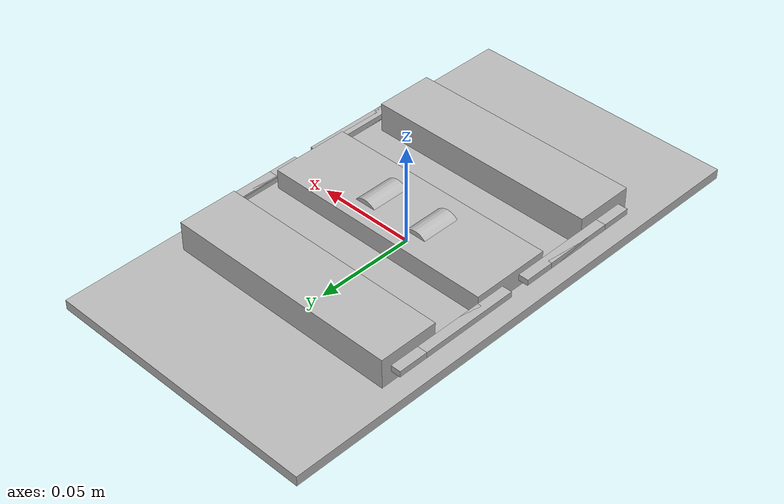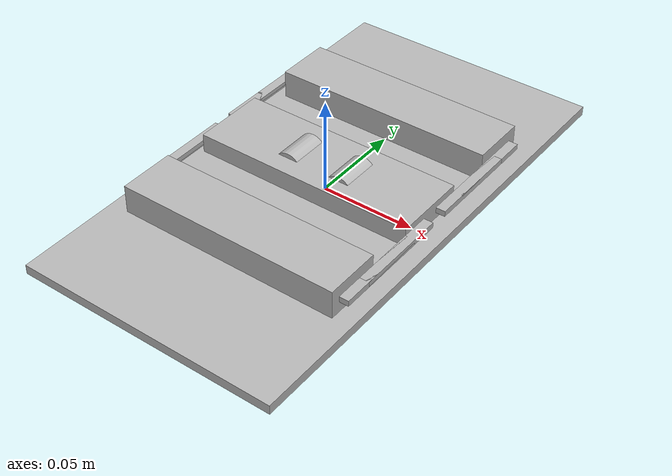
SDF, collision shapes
<?xml version='1.0'?>
<sdf version='1.4'>
  <model name="actuatorBot">
    <static>false</static>

    <link name='base'>
          <pose>0 0 .0025 0 0 0</pose>
          <collision name='collision'>
            <geometry>
              <box>
                <size>0.14 0.26 0.005</size>
              </box>
            </geometry>
          </collision>

          <visual name='visual'>
            <pose>0 0 0 0 0 1.57079633</pose>
            <geometry>
              <mesh>
                <uri>model://actuatorBot/meshes/base.dae</uri>
              </mesh>
            </geometry>
          </visual>
      </link>
      <link name="carriage1">
        <pose>0 0.06 0.0125 0 0 0</pose>
        <collision name="collision">
          <geometry>
            <box>
              <size>0.12 0.03 0.015</size>
            </box>
          </geometry>
        </collision>
        <visual name='visual'>
            <pose>-0.0025 0 0 0 0 0.005</pose>
            <geometry>
              <mesh>
                <uri>model://actuatorBot/meshes/carriage.dae</uri>
              </mesh>
            </geometry>
          </visual>
      </link>

    <link name="carriage2">
        <pose>0 -0.06 0.0125 0 0 0</pose>
        <collision name="collision">
          <geometry>
            <box>
              <size>0.12 0.03 0.015</size>
            </box>
          </geometry>
        </collision>
        <visual name='visual'>
            <pose>-0.0025 0 0 0 0 0.005</pose>
            <geometry>
              <mesh>
                <uri>model://actuatorBot/meshes/carriage.dae</uri>
              </mesh>
            </geometry>
          </visual>
      </link>

  <link name="arml1">
        <pose>0.0625 -0.045 .0125 0 0 0</pose>
        <collision name="collision">
          <geometry>
            <box>
              <size>0.005 0.05 0.003</size>
            </box>
          </geometry>
        </collision>
        <visual name='visual'>
            <pose>0 0 0 1.57059633 0 1.57059633</pose>
            <geometry>
              <mesh>
                <uri>model://actuatorBot/meshes/arm1.dae</uri>
              </mesh>
            </geometry>
          </visual>
      </link>

  <link name="arml2">
        <pose>0.0625 0.045 .0125 0 0 0</pose>
        <collision name="collision">
          <geometry>
            <box>
              <size>0.005 0.05 0.003</size>
            </box>
          </geometry>
        </collision>
        <visual name='visual'>
            <pose>0 0 0 1.57059633 0 1.57059633</pose>
            <geometry>
              <mesh>
                <uri>model://actuatorBot/meshes/arm1.dae</uri>
              </mesh>
            </geometry>
          </visual>
      </link>

<link name="arml3">
        <pose>0.0625 -0.03 .0125 0 0 0</pose>
        <collision name="collision">
          <geometry>
            <box>
              <size>0.005 0.05 0.003</size>
            </box>
          </geometry>
        </collision>
        <visual name='visual'>
            <pose>0 0 0 1.57059633 3.1415 1.57059633</pose>
            <geometry>
              <mesh>
                <uri>model://actuatorBot/meshes/arm1.dae</uri>
              </mesh>
            </geometry>
          </visual>
      </link>

  <link name="arml4">
        <pose>0.0625 0.03 .0125 0 0 0</pose>
        <collision name="collision">
          <geometry>
            <box>
              <size>0.005 0.05 0.003</size>
            </box>
          </geometry>
        </collision>
        <visual name='visual'>
            <pose>0 0 0 1.57059633 3.1415 1.57059633</pose>
            <geometry>
              <mesh>
                <uri>model://actuatorBot/meshes/arm1.dae</uri>
              </mesh>
            </geometry>
          </visual>
      </link>

<link name="armr1">
        <pose>-0.0625 -0.045 .0125 0 0 0</pose>
        <collision name="collision">
          <geometry>
            <box>
              <size>0.005 0.05 0.003</size>
            </box>
          </geometry>
        </collision>
        <visual name='visual'>
            <pose>0 0 0 1.57059633 0 1.57059633</pose>
            <geometry>
              <mesh>
                <uri>model://actuatorBot/meshes/arm1.dae</uri>
              </mesh>
            </geometry>
          </visual>
      </link>

  <link name="armr2">
        <pose>-0.0625 0.045 .0125 0 0 0</pose>
        <collision name="collision">
          <geometry>
            <box>
              <size>0.005 0.05 0.003</size>
            </box>
          </geometry>
        </collision>
        <visual name='visual'>
            <pose>0 0 0 1.57059633 0 1.57059633</pose>
            <geometry>
              <mesh>
                <uri>model://actuatorBot/meshes/arm1.dae</uri>
              </mesh>
            </geometry>
          </visual>
      </link>

<link name="armr3">
        <pose>-0.0625 -0.03 .0125 0 0 0</pose>
        <collision name="collision">
          <geometry>
            <box>
              <size>0.005 0.05 0.003</size>
            </box>
          </geometry>
        </collision>
        <visual name='visual'>
            <pose>0 0 0 1.57059633 3.1415 1.57059633</pose>
            <geometry>
              <mesh>
                <uri>model://actuatorBot/meshes/arm1.dae</uri>
              </mesh>
            </geometry>
          </visual>
      </link>

  <link name="armr4">
        <pose>-0.0625 0.03 .0125 0 0 0</pose>
        <collision name="collision">
          <geometry>
            <box>
              <size>0.005 0.05 0.003</size>
            </box>
          </geometry>
        </collision>
        <visual name='visual'>
            <pose>0 0 0 1.57059633 3.1415 1.57059633</pose>
            <geometry>
              <mesh>
                <uri>model://actuatorBot/meshes/arm1.dae</uri>
              </mesh>
            </geometry>
          </visual>
      </link>

  <link name="middle">
        <pose>0 0 0.0125 0 0 0</pose>
        <collision name="collision">
          <geometry>
            <box>
              <size>0.12 0.04 0.01</size>
            </box>
          </geometry>
        </collision>
        <visual name='visual'>
            <pose>0 0 0 0 0 1.57059633</pose>
            <geometry>
              <mesh>
                <uri>model://actuatorBot/meshes/middle.dae</uri>
              </mesh>
            </geometry>
          </visual>
      </link>

 <link name="left_wheel">
        <pose>-0.015 0 0.0125 0 1.5707 1.5707</pose>
        <collision name="collision">
          <geometry>
            <cylinder>
              <radius>.0075</radius>
              <length>.02</length>
            </cylinder>
          </geometry>
        </collision>
        <visual name="visual">
          <geometry>
            <cylinder>
              <radius>.0075</radius>
              <length>.02</length>
            </cylinder>
          </geometry>
        </visual>
      </link>

<link name="right_wheel">
        <pose>0.015 0 0.0125 0 1.5707 1.5707</pose>
        <collision name="collision">
          <geometry>
            <cylinder>
              <radius>.0075</radius>
              <length>.02</length>
            </cylinder>
          </geometry>
        </collision>
        <visual name="visual">
          <geometry>
            <cylinder>
              <radius>.0075</radius>
              <length>.02</length>
            </cylinder>
          </geometry>
        </visual>
      </link>

    <joint type="prismatic" name="upper carriage">
        <pose>0 0.06 0.0125 0 0 0</pose>
        <child>carriage1</child>
        <parent>base</parent>
        <axis>
		<limit>
                    <lower>-0.4</lower>
                    <upper>0.4</upper>
                </limit>
          <xyz>0 1 0</xyz>
        </axis>
      </joint>

      <joint type="prismatic" name="lower carriage">
        <pose>0 -0.06 0.0125 0 0 0</pose>
        <child>carriage2</child>
        <parent>base</parent>
        <axis>
		<limit>
                    <lower>-0.4</lower>
                    <upper>0.4</upper>
                </limit>
          <xyz>0 1 0</xyz>
        </axis>
      </joint>

  </model>
</sdf>
